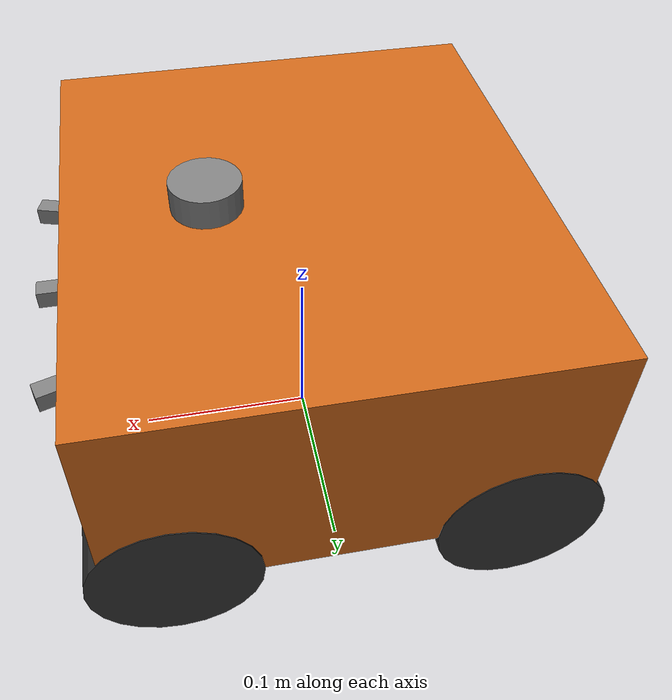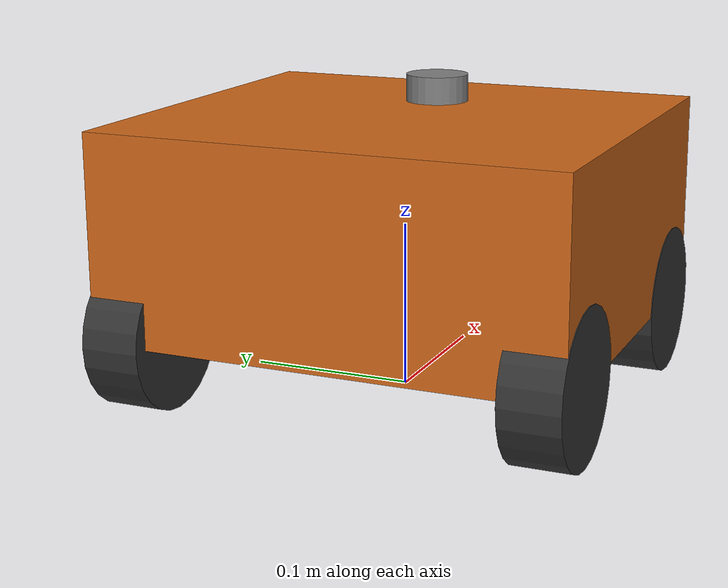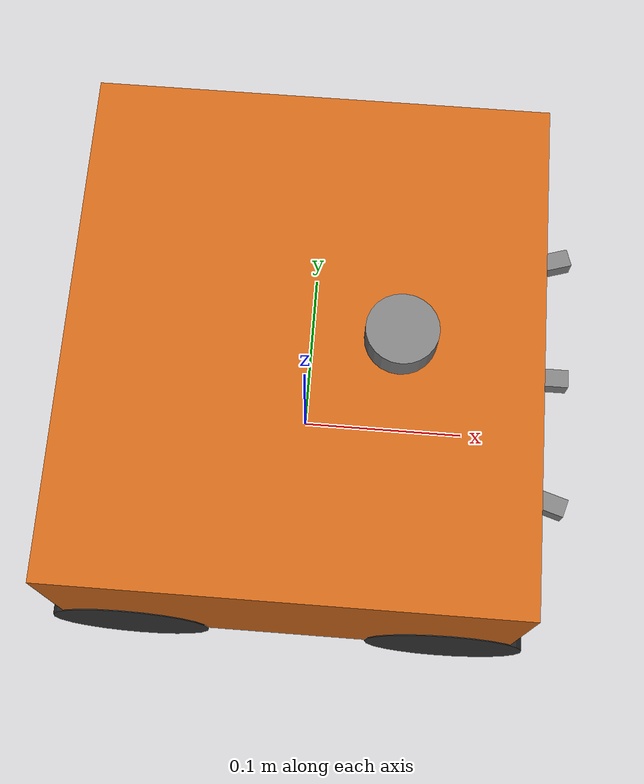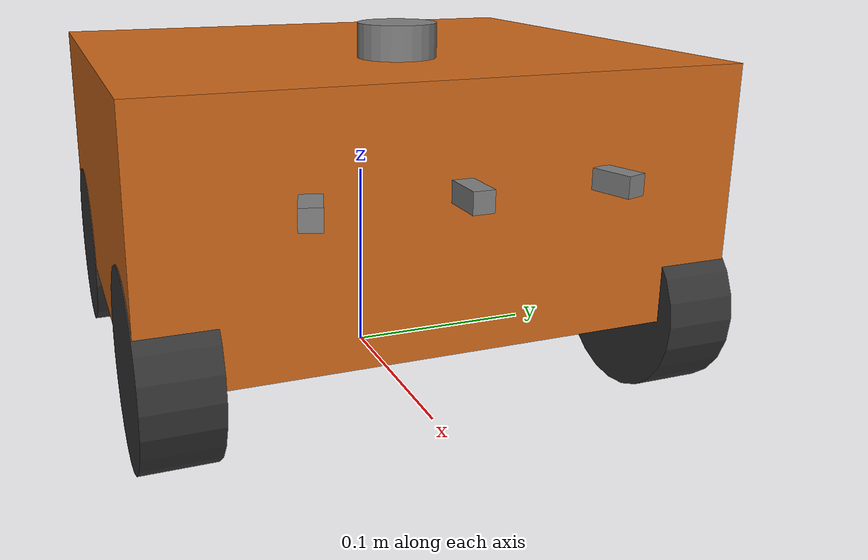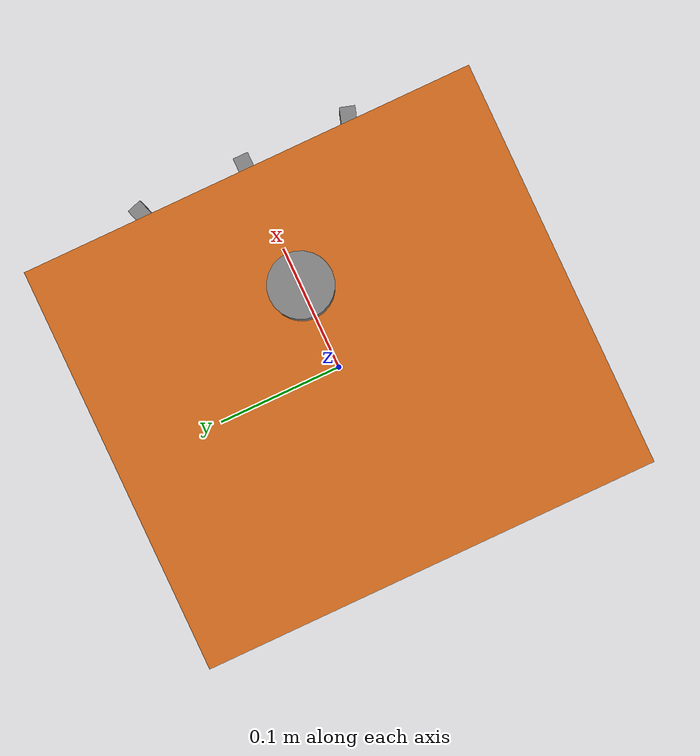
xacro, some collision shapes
<?xml version="1.0"?>
<robot xmlns:xacro="http://www.ros.org/wiki/xacro" name="slodda">

  <xacro:property name="chassis_length" value="0.250"/>
  <xacro:property name="chassis_width"  value="0.280"/>
  <xacro:property name="chassis_height" value="0.122"/>
  <xacro:property name="chassis_mass"   value="2.5"/>
  <xacro:property name="wheel_radius"   value="0.045"/>
  <xacro:property name="wheel_width"    value="0.035"/>
  <xacro:property name="wheel_x_offset" value="0.090"/>
  <xacro:property name="wheel_y_offset" value="0.123"/>

  <material name="orange">   <color rgba="0.8 0.4 0.1 1.0"/> </material>
  <material name="dark_grey"><color rgba="0.2 0.2 0.2 1.0"/> </material>
  <material name="grey">     <color rgba="0.5 0.5 0.5 1.0"/> </material>

  <link name="base_footprint"/>

  <joint name="base_footprint_joint" type="fixed">
    <parent link="base_footprint"/>
    <child link="base_link"/>
    <origin xyz="0 0 ${wheel_radius}" rpy="0 0 0"/>
  </joint>

  <link name="base_link">
    <visual>
      <origin xyz="-0.1414 -0.1000 0.0" rpy="${pi/2} 0 0"/>
      <geometry>
        <mesh filename="package://slodda_description/meshes/chassis.stl" scale="0.001 0.001 0.001"/>
      </geometry>
      <material name="orange"/>
    </visual>
    <collision>
      <origin xyz="0 0 0.061" rpy="0 0 0"/>
      <geometry>
        <box size="${chassis_length} ${chassis_width} ${chassis_height}"/>
      </geometry>
    </collision>
    <inertial>
      <mass value="${chassis_mass}"/>
      <origin xyz="0 0 0.061" rpy="0 0 0"/>
      <inertia ixx="0.0197" ixy="0.0" ixz="0.0"
               iyy="0.0164" iyz="0.0"
               izz="0.0309"/>
    </inertial>
  </link>
<!-- LD06 LiDAR -->
  <link name="lidar_link">
    <visual>
      <origin xyz="0 0 0" rpy="0 0 0"/>
      <geometry>
        <cylinder radius="0.019" length="0.033"/>
      </geometry>
      <material name="grey"/>
    </visual>
    <collision>
      <origin xyz="0 0 0" rpy="0 0 0"/>
      <geometry>
        <cylinder radius="0.019" length="0.033"/>
      </geometry>
    </collision>
    <inertial>
      <mass value="0.180"/>
      <origin xyz="0 0 0" rpy="0 0 0"/>
      <inertia ixx="0.0001" ixy="0.0" ixz="0.0"
               iyy="0.0001" iyz="0.0"
               izz="0.0001"/>
    </inertial>
  </link>

  <joint name="lidar_joint" type="fixed">
    <parent link="base_link"/>
    <child link="lidar_link"/>
    <origin xyz="0.05 0 0.122" rpy="0 0 0"/>
  </joint>

  <gazebo reference="lidar_link">
    <sensor name="ld06_lidar" type="gpu_lidar">
      <topic>scan</topic>
      <gz_frame_id>lidar_link</gz_frame_id>
      <update_rate>10</update_rate>
      <lidar>
        <scan>
          <horizontal>
            <samples>360</samples>
            <resolution>1</resolution>
            <min_angle>-3.14159</min_angle>
            <max_angle>3.14159</max_angle>
          </horizontal>
        </scan>
        <range>
          <min>0.02</min>
          <max>12.0</max>
          <resolution>0.03</resolution>
        </range>
      </lidar>
      <always_on>true</always_on>
      <visualize>true</visualize>
    </sensor>
  </gazebo>

  <xacro:macro name="wheel" params="name x y">
    <link name="${name}">
      <visual>
        <origin xyz="0 0 0" rpy="${pi/2} 0 0"/>
        <geometry>
          <cylinder radius="${wheel_radius}" length="${wheel_width}"/>
        </geometry>
        <material name="dark_grey"/>
      </visual>
      <collision>
        <origin xyz="0 0 0" rpy="${pi/2} 0 0"/>
        <geometry>
          <cylinder radius="${wheel_radius}" length="${wheel_width}"/>
        </geometry>
      </collision>
      <inertial>
        <mass value="0.15"/>
        <origin xyz="0 0 0"/>
        <inertia ixx="0.0001" ixy="0.0" ixz="0.0"
                 iyy="0.0001" iyz="0.0"
                 izz="0.0002"/>
      </inertial>
    </link>
    <joint name="${name}_joint" type="continuous">
      <parent link="base_link"/>
      <child link="${name}"/>
      <origin xyz="${x} ${y} 0" rpy="0 0 0"/>
      <axis xyz="0 1 0"/>
    </joint>
  </xacro:macro>

  <xacro:wheel name="left_front_wheel"  x=" ${wheel_x_offset}" y=" ${wheel_y_offset}"/>
  <xacro:wheel name="left_rear_wheel"   x="-${wheel_x_offset}" y=" ${wheel_y_offset}"/>
  <xacro:wheel name="right_front_wheel" x=" ${wheel_x_offset}" y="-${wheel_y_offset}"/>
  <xacro:wheel name="right_rear_wheel"  x="-${wheel_x_offset}" y="-${wheel_y_offset}"/>

  <!-- IR sensor lenker - ingen preserveFixedJoint, slik at de lumpes inn i base_link -->
  <xacro:macro name="ir_sensor" params="name x y yaw">
    <link name="${name}">
      <visual>
        <geometry><box size="0.02 0.01 0.01"/></geometry>
        <material name="grey"/>
      </visual>
      <inertial>
        <mass value="0.001"/>
        <origin xyz="0 0 0"/>
        <inertia ixx="0.000001" ixy="0.0" ixz="0.0"
                 iyy="0.000001" iyz="0.0"
                 izz="0.000001"/>
      </inertial>
    </link>
    <joint name="${name}_joint" type="fixed">
      <parent link="base_link"/>
      <child link="${name}"/>
      <origin xyz="${x} ${y} 0.075" rpy="0 0 ${yaw}"/>
    </joint>
  </xacro:macro>

  <xacro:ir_sensor name="ir_front_left"   x=" 0.135" y=" 0.07" yaw="0.3"/>
  <xacro:ir_sensor name="ir_front_center" x=" 0.135" y=" 0.00" yaw="0"/>
  <xacro:ir_sensor name="ir_front_right"  x=" 0.135" y="-0.07" yaw="-0.3"/>

  <!-- IR sensor plugins -->
  <xacro:macro name="ir_gazebo" params="name topic">
    <gazebo reference="${name}">
      <sensor name="${name}_sensor" type="gpu_lidar">
        <update_rate>10</update_rate>
        <lidar>
          <scan>
            <horizontal>
              <samples>5</samples>
              <resolution>1</resolution>
              <min_angle>-0.1</min_angle>
              <max_angle>0.1</max_angle>
            </horizontal>
          </scan>
          <range>
            <min>0.04</min>
            <max>0.30</max>
            <resolution>0.001</resolution>
          </range>
        </lidar>
        <always_on>1</always_on>
        <visualize>true</visualize>
        <topic>${topic}</topic>
      </sensor>
    </gazebo>
  </xacro:macro>

  <xacro:ir_gazebo name="ir_front_left"   topic="ir_front_left"/>
  <xacro:ir_gazebo name="ir_front_center" topic="ir_front_center"/>
  <xacro:ir_gazebo name="ir_front_right"  topic="ir_front_right"/>

  <gazebo>
    <plugin filename="gz-sim-diff-drive-system"
            name="gz::sim::systems::DiffDrive">
      <left_joint>left_front_wheel_joint</left_joint>
      <left_joint>left_rear_wheel_joint</left_joint>
      <right_joint>right_front_wheel_joint</right_joint>
      <right_joint>right_rear_wheel_joint</right_joint>
      <wheel_separation>${wheel_y_offset * 2}</wheel_separation>
      <wheel_radius>${wheel_radius}</wheel_radius>
      <max_linear_velocity>0.5</max_linear_velocity>
      <max_angular_velocity>1.0</max_angular_velocity>
      <max_linear_acceleration>1.0</max_linear_acceleration>
      <max_angular_acceleration>2.0</max_angular_acceleration>
      <odom_publish_frequency>50</odom_publish_frequency>
      <topic>cmd_vel</topic>
      <odom_topic>odom</odom_topic>
      <frame_id>odom</frame_id>
      <child_frame_id>base_footprint</child_frame_id>
      <tf_topic>/tf</tf_topic>
    </plugin>
  </gazebo>

  <xacro:macro name="wheel_gazebo" params="name">
    <gazebo reference="${name}">
      <mu1>1.5</mu1><mu2>1.5</mu2>
      <kp>1000000.0</kp><kd>100.0</kd>
      <minDepth>0.001</minDepth><maxVel>1.0</maxVel>
    </gazebo>
  </xacro:macro>

  <xacro:wheel_gazebo name="left_front_wheel"/>
  <xacro:wheel_gazebo name="left_rear_wheel"/>
  <xacro:wheel_gazebo name="right_front_wheel"/>
  <xacro:wheel_gazebo name="right_rear_wheel"/>

  <gazebo>
    <plugin filename="gz-sim-joint-state-publisher-system"
            name="gz::sim::systems::JointStatePublisher">
    </plugin>
  </gazebo>

</robot>
